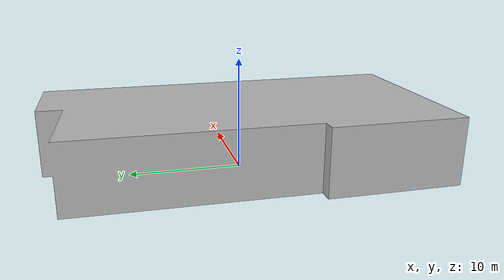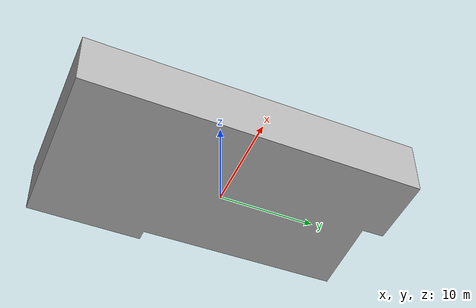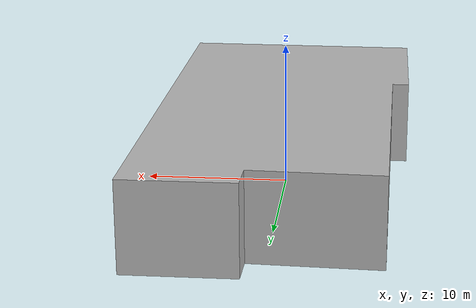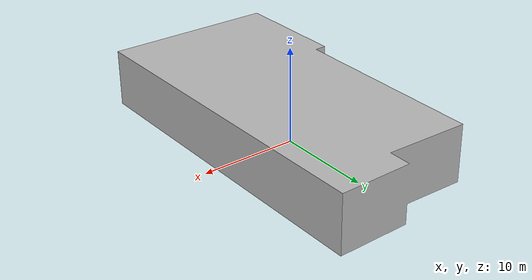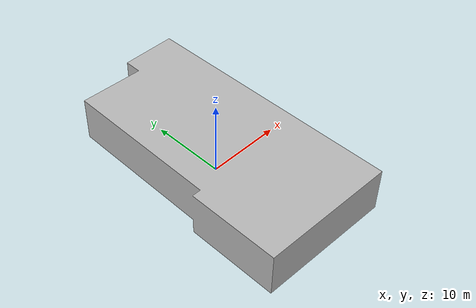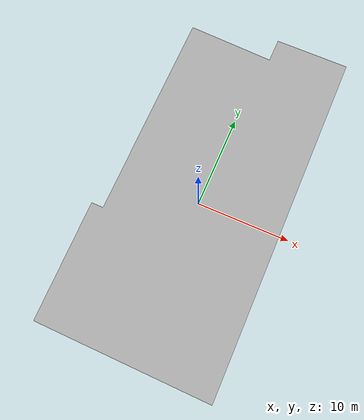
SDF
<?xml version="1.0" ?>
<sdf version="1.7">
  <model name="building_2164_assumed_a_gnr">
    <static>true</static>
    <link name="building_link">
      <visual name="building_visual">
        <geometry>
          <mesh>
            <uri>model://building_2164_assumed_a_gnr/meshes/construction_2164_assumed_A_GNR_h6m.obj</uri>
          </mesh>
        </geometry>
      </visual>
    <collision name="building_collision">
      <geometry>
        <mesh>
          <uri>model://building_2164_assumed_a_gnr/meshes/construction_2164_assumed_A_GNR_h6m.obj</uri>
        </mesh>
      </geometry>
    </collision>
    </link>
  </model>
</sdf>
